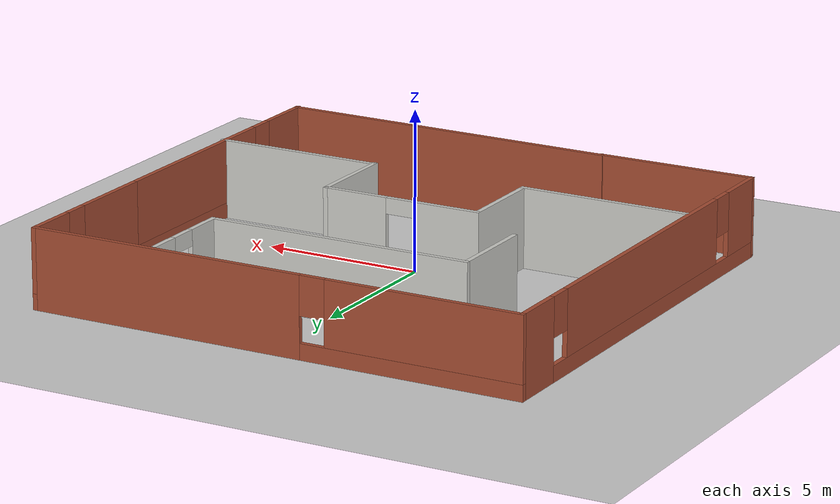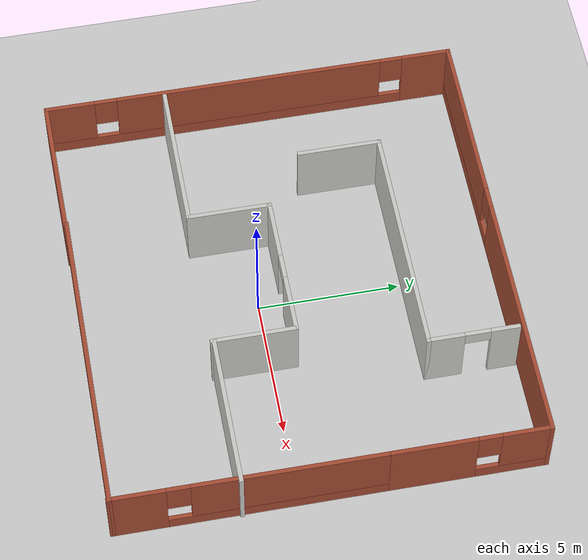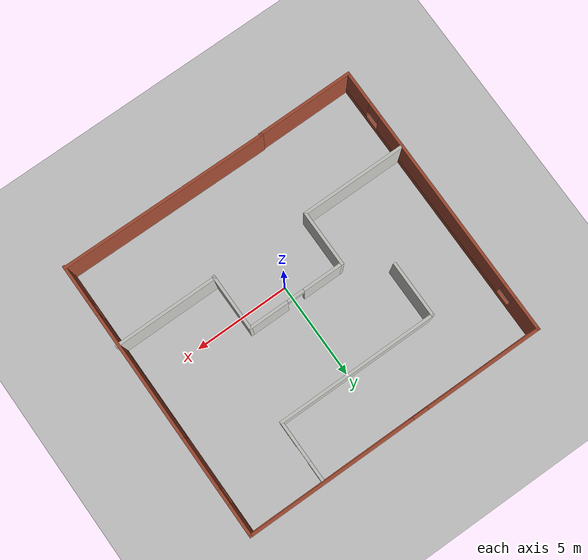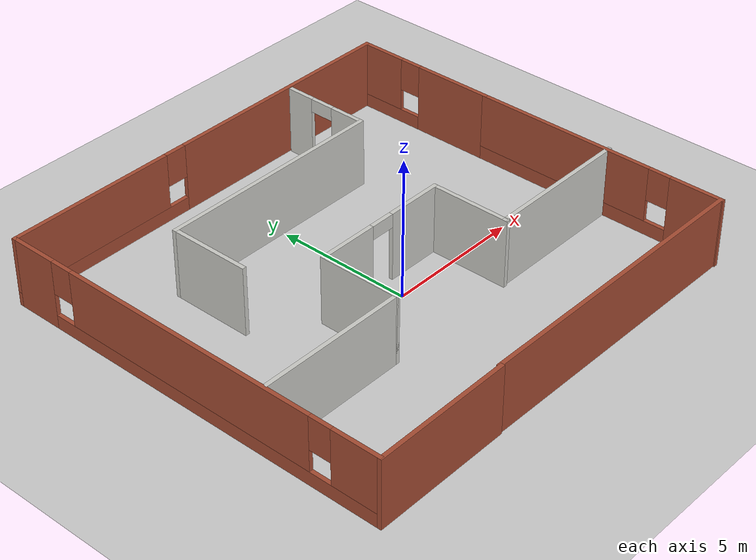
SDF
<?xml version="1.0" ?>
<sdf version="1.4">
 <world name="default">
    <scene>
      <ambient>0.68 0.68 0.68 1.0</ambient>
      <shadows> false</shadows>
      <sky>
        <sunrise/>
        <clouds>
          <speed>12</speed>
      </clouds>
      </sky>
    </scene>

    <physics type='ode'>
      <max_step_size>0.001</max_step_size>
      <real_time_factor>1</real_time_factor>
      <real_time_update_rate>1000</real_time_update_rate>
      <gravity>0 0 -9.8</gravity>
    </physics>

    <include>
      <uri>model://SampleScene</uri>
    </include>
    <include>
      <uri>model://ISCAS_groundplane</uri>
    </include>
  </world>
</sdf>

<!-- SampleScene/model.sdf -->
<sdf version='1.6'>
  <model name='SampleScene'>
    <pose frame=''>-0.088684 1.08173 0 0 -0 0</pose>
    <link name='Wall_0'>
      <collision name='Wall_0_Collision'>
        <geometry>
          <box>
            <size>11.0007 0.15 2.5</size>
          </box>
        </geometry>
        <pose frame=''>0 0 1.25 0 -0 0</pose>
      </collision>
      <visual name='Wall_0_Visual'>
        <pose frame=''>0 0 1.25 0 -0 0</pose>
        <geometry>
          <box>
            <size>11.0007 0.15 2.5</size>
          </box>
        </geometry>
        <material>
          <script>
            <uri>file://media/materials/scripts/gazebo.material</uri>
            <name>Gazebo/Bricks</name>
          </script>
          <ambient>1 1 1 1</ambient>
        </material>
        <meta>
          <layer>0</layer>
        </meta>
      </visual>
      <pose frame=''>2.4645 -7.28966 0 0 -0 -0.007415</pose>
    </link>
    <link name='Wall_1'>
      <pose frame=''>7.8895 -2.675 0 0 -0 1.5708</pose>
      <visual name='Wall_1_Visual_0'>
        <pose frame=''>-3.78336 0 1.25 0 -0 0</pose>
        <geometry>
          <box>
            <size>1.97351 0.15 2.5</size>
          </box>
        </geometry>
        <material>
          <script>
            <uri>file://media/materials/scripts/gazebo.material</uri>
            <name>Gazebo/Bricks</name>
          </script>
          <ambient>1 1 1 1</ambient>
        </material>
        <meta>
          <layer>0</layer>
        </meta>
      </visual>
      <collision name='Wall_1_Collision_0'>
        <geometry>
          <box>
            <size>1.97351 0.15 2.5</size>
          </box>
        </geometry>
        <pose frame=''>-3.78336 0 1.25 0 -0 0</pose>
      </collision>
      <visual name='Wall_1_Visual_1'>
        <pose frame=''>0.986754 0 0.25 0 -0 0</pose>
        <geometry>
          <box>
            <size>7.56672 0.15 0.5</size>
          </box>
        </geometry>
        <material>
          <script>
            <uri>file://media/materials/scripts/gazebo.material</uri>
            <name>Gazebo/Bricks</name>
          </script>
          <ambient>1 1 1 1</ambient>
        </material>
        <meta>
          <layer>0</layer>
        </meta>
      </visual>
      <collision name='Wall_1_Collision_1'>
        <geometry>
          <box>
            <size>7.56672 0.15 0.5</size>
          </box>
        </geometry>
        <pose frame=''>0.986754 0 0.25 0 -0 0</pose>
      </collision>
      <visual name='Wall_1_Visual_2'>
        <pose frame=''>1.38675 0 1.5 0 -0 0</pose>
        <geometry>
          <box>
            <size>6.76672 0.15 2</size>
          </box>
        </geometry>
        <material>
          <script>
            <uri>file://media/materials/scripts/gazebo.material</uri>
            <name>Gazebo/Bricks</name>
          </script>
          <ambient>1 1 1 1</ambient>
        </material>
        <meta>
          <layer>0</layer>
        </meta>
      </visual>
      <collision name='Wall_1_Collision_2'>
        <geometry>
          <box>
            <size>6.76672 0.15 2</size>
          </box>
        </geometry>
        <pose frame=''>1.38675 0 1.5 0 -0 0</pose>
      </collision>
      <visual name='Wall_1_Visual_3'>
        <pose frame=''>-2.39661 0 1.9 0 -0 0</pose>
        <geometry>
          <box>
            <size>0.8 0.15 1.2</size>
          </box>
        </geometry>
        <material>
          <script>
            <uri>file://media/materials/scripts/gazebo.material</uri>
            <name>Gazebo/Bricks</name>
          </script>
          <ambient>1 1 1 1</ambient>
        </material>
        <meta>
          <layer>0</layer>
        </meta>
      </visual>
      <collision name='Wall_1_Collision_3'>
        <geometry>
          <box>
            <size>0.8 0.15 1.2</size>
          </box>
        </geometry>
        <pose frame=''>-2.39661 0 1.9 0 -0 0</pose>
      </collision>
    </link>
    <link name='Wall_11'>
      <pose frame=''>3.89864 5.63446 0 0 -0 -1.5708</pose>
      <visual name='Wall_11_Visual_0'>
        <pose frame=''>-1.11091 0 1.25 0 -0 0</pose>
        <geometry>
          <box>
            <size>1.02818 0.15 2.5</size>
          </box>
        </geometry>
        <material>
          <script>
            <uri>file://media/materials/scripts/gazebo.material</uri>
            <name>Gazebo/CeilingTiled</name>
          </script>
          <ambient>0.921569 0.807843 0.615686 1</ambient>
        </material>
        <meta>
          <layer>0</layer>
        </meta>
      </visual>
      <collision name='Wall_11_Collision_0'>
        <geometry>
          <box>
            <size>1.02818 0.15 2.5</size>
          </box>
        </geometry>
        <pose frame=''>-1.11091 0 1.25 0 -0 0</pose>
      </collision>
      <visual name='Wall_11_Visual_1'>
        <pose frame=''>0.964093 0 1.25 0 -0 0</pose>
        <geometry>
          <box>
            <size>1.32181 0.15 2.5</size>
          </box>
        </geometry>
        <material>
          <script>
            <uri>file://media/materials/scripts/gazebo.material</uri>
            <name>Gazebo/CeilingTiled</name>
          </script>
          <ambient>0.921569 0.807843 0.615686 1</ambient>
        </material>
        <meta>
          <layer>0</layer>
        </meta>
      </visual>
      <collision name='Wall_11_Collision_1'>
        <geometry>
          <box>
            <size>1.32181 0.15 2.5</size>
          </box>
        </geometry>
        <pose frame=''>0.964093 0 1.25 0 -0 0</pose>
      </collision>
      <visual name='Wall_11_Visual_2'>
        <pose frame=''>-0.146815 0 2.25 0 -0 0</pose>
        <geometry>
          <box>
            <size>0.9 0.15 0.5</size>
          </box>
        </geometry>
        <material>
          <script>
            <uri>file://media/materials/scripts/gazebo.material</uri>
            <name>Gazebo/CeilingTiled</name>
          </script>
          <ambient>0.921569 0.807843 0.615686 1</ambient>
        </material>
        <meta>
          <layer>0</layer>
        </meta>
      </visual>
      <collision name='Wall_11_Collision_2'>
        <geometry>
          <box>
            <size>0.9 0.15 0.5</size>
          </box>
        </geometry>
        <pose frame=''>-0.146815 0 2.25 0 -0 0</pose>
      </collision>
    </link>
    <link name='Wall_12'>
      <collision name='Wall_12_Collision'>
        <geometry>
          <box>
            <size>8.5 0.15 2.5</size>
          </box>
        </geometry>
        <pose frame=''>0 0 1.25 0 -0 0</pose>
      </collision>
      <visual name='Wall_12_Visual'>
        <pose frame=''>0 0 1.25 0 -0 0</pose>
        <geometry>
          <box>
            <size>8.5 0.15 2.5</size>
          </box>
        </geometry>
        <material>
          <script>
            <uri>file://media/materials/scripts/gazebo.material</uri>
            <name>Gazebo/CeilingTiled</name>
          </script>
          <ambient>0.921569 0.807843 0.615686 1</ambient>
        </material>
        <meta>
          <layer>0</layer>
        </meta>
      </visual>
      <pose frame=''>-0.276365 4.08446 0 0 -0 3.14159</pose>
    </link>
    <link name='Wall_13'>
      <collision name='Wall_13_Collision'>
        <geometry>
          <box>
            <size>3 0.15 2.5</size>
          </box>
        </geometry>
        <pose frame=''>0 0 1.25 0 -0 0</pose>
      </collision>
      <visual name='Wall_13_Visual'>
        <pose frame=''>0 0 1.25 0 -0 0</pose>
        <geometry>
          <box>
            <size>3 0.15 2.5</size>
          </box>
        </geometry>
        <material>
          <script>
            <uri>file://media/materials/scripts/gazebo.material</uri>
            <name>Gazebo/CeilingTiled</name>
          </script>
          <ambient>0.921569 0.807843 0.615686 1</ambient>
        </material>
        <meta>
          <layer>0</layer>
        </meta>
      </visual>
      <pose frame=''>-4.45137 2.65946 0 0 -0 -1.5708</pose>
    </link>
    <link name='Wall_24'>
      <collision name='Wall_24_Collision'>
        <geometry>
          <box>
            <size>5.5 0.15 2.5</size>
          </box>
        </geometry>
        <pose frame=''>0 0 1.25 0 -0 0</pose>
      </collision>
      <visual name='Wall_24_Visual'>
        <pose frame=''>0 0 1.25 0 -0 0</pose>
        <geometry>
          <box>
            <size>5.5 0.15 2.5</size>
          </box>
        </geometry>
        <material>
          <script>
            <uri>file://media/materials/scripts/gazebo.material</uri>
            <name>Gazebo/CeilingTiled</name>
          </script>
          <ambient>0.921569 0.807843 0.615686 1</ambient>
        </material>
        <meta>
          <layer>0</layer>
        </meta>
      </visual>
      <pose frame=''>-5.16403 -3.04999 0 0 -0 0</pose>
    </link>
    <link name='Wall_25'>
      <collision name='Wall_25_Collision'>
        <geometry>
          <box>
            <size>3 0.15 2.5</size>
          </box>
        </geometry>
        <pose frame=''>0 0 1.25 0 -0 0</pose>
      </collision>
      <visual name='Wall_25_Visual'>
        <pose frame=''>0 0 1.25 0 -0 0</pose>
        <geometry>
          <box>
            <size>3 0.15 2.5</size>
          </box>
        </geometry>
        <material>
          <script>
            <uri>file://media/materials/scripts/gazebo.material</uri>
            <name>Gazebo/CeilingTiled</name>
          </script>
          <ambient>0.921569 0.807843 0.615686 1</ambient>
        </material>
        <meta>
          <layer>0</layer>
        </meta>
      </visual>
      <pose frame=''>-2.48903 -1.62499 0 0 -0 1.5708</pose>
    </link>
    <link name='Wall_28'>
      <pose frame=''>0.060971 -0.199991 0 0 -0 0</pose>
      <visual name='Wall_28_Visual_0'>
        <pose frame=''>-1.52407 0 1.25 0 -0 0</pose>
        <geometry>
          <box>
            <size>2.20186 0.15 2.5</size>
          </box>
        </geometry>
        <material>
          <script>
            <uri>file://media/materials/scripts/gazebo.material</uri>
            <name>Gazebo/CeilingTiled</name>
          </script>
          <ambient>0.921569 0.807843 0.615686 1</ambient>
        </material>
        <meta>
          <layer>0</layer>
        </meta>
      </visual>
      <collision name='Wall_28_Collision_0'>
        <geometry>
          <box>
            <size>2.20186 0.15 2.5</size>
          </box>
        </geometry>
        <pose frame=''>-1.52407 0 1.25 0 -0 0</pose>
      </collision>
      <visual name='Wall_28_Visual_1'>
        <pose frame=''>1.55093 0 1.25 0 -0 0</pose>
        <geometry>
          <box>
            <size>2.14814 0.15 2.5</size>
          </box>
        </geometry>
        <material>
          <script>
            <uri>file://media/materials/scripts/gazebo.material</uri>
            <name>Gazebo/CeilingTiled</name>
          </script>
          <ambient>0.921569 0.807843 0.615686 1</ambient>
        </material>
        <meta>
          <layer>0</layer>
        </meta>
      </visual>
      <collision name='Wall_28_Collision_1'>
        <geometry>
          <box>
            <size>2.14814 0.15 2.5</size>
          </box>
        </geometry>
        <pose frame=''>1.55093 0 1.25 0 -0 0</pose>
      </collision>
      <visual name='Wall_28_Visual_2'>
        <pose frame=''>0.026859 0 2.25 0 -0 0</pose>
        <geometry>
          <box>
            <size>0.9 0.15 0.5</size>
          </box>
        </geometry>
        <material>
          <script>
            <uri>file://media/materials/scripts/gazebo.material</uri>
            <name>Gazebo/CeilingTiled</name>
          </script>
          <ambient>0.921569 0.807843 0.615686 1</ambient>
        </material>
        <meta>
          <layer>0</layer>
        </meta>
      </visual>
      <collision name='Wall_28_Collision_2'>
        <geometry>
          <box>
            <size>0.9 0.15 0.5</size>
          </box>
        </geometry>
        <pose frame=''>0.026859 0 2.25 0 -0 0</pose>
      </collision>
    </link>
    <link name='Wall_29'>
      <collision name='Wall_29_Collision'>
        <geometry>
          <box>
            <size>3.016 0.15 2.5</size>
          </box>
        </geometry>
        <pose frame=''>0 0 1.25 0 -0 0</pose>
      </collision>
      <visual name='Wall_29_Visual'>
        <pose frame=''>0 0 1.25 0 -0 0</pose>
        <geometry>
          <box>
            <size>3.016 0.15 2.5</size>
          </box>
        </geometry>
        <material>
          <script>
            <uri>file://media/materials/scripts/gazebo.material</uri>
            <name>Gazebo/CeilingTiled</name>
          </script>
          <ambient>0.921569 0.807843 0.615686 1</ambient>
        </material>
        <meta>
          <layer>0</layer>
        </meta>
      </visual>
      <pose frame=''>2.61097 -1.63299 0 0 -0 -1.5708</pose>
    </link>
    <link name='Wall_3'>
      <pose frame=''>7.8895 4.69511 0 0 -0 1.5708</pose>
      <visual name='Wall_3_Visual_0'>
        <pose frame=''>-1.27132 0 1.25 0 -0 0</pose>
        <geometry>
          <box>
            <size>2.95736 0.15 2.5</size>
          </box>
        </geometry>
        <material>
          <script>
            <uri>file://media/materials/scripts/gazebo.material</uri>
            <name>Gazebo/Bricks</name>
          </script>
          <ambient>1 1 1 1</ambient>
        </material>
        <meta>
          <layer>0</layer>
        </meta>
      </visual>
      <collision name='Wall_3_Collision_0'>
        <geometry>
          <box>
            <size>2.95736 0.15 2.5</size>
          </box>
        </geometry>
        <pose frame=''>-1.27132 0 1.25 0 -0 0</pose>
      </collision>
      <visual name='Wall_3_Visual_1'>
        <pose frame=''>1.47868 0 0.25 0 -0 0</pose>
        <geometry>
          <box>
            <size>2.54264 0.15 0.5</size>
          </box>
        </geometry>
        <material>
          <script>
            <uri>file://media/materials/scripts/gazebo.material</uri>
            <name>Gazebo/Bricks</name>
          </script>
          <ambient>1 1 1 1</ambient>
        </material>
        <meta>
          <layer>0</layer>
        </meta>
      </visual>
      <collision name='Wall_3_Collision_1'>
        <geometry>
          <box>
            <size>2.54264 0.15 0.5</size>
          </box>
        </geometry>
        <pose frame=''>1.47868 0 0.25 0 -0 0</pose>
      </collision>
      <visual name='Wall_3_Visual_2'>
        <pose frame=''>1.87868 0 1.5 0 -0 0</pose>
        <geometry>
          <box>
            <size>1.74264 0.15 2</size>
          </box>
        </geometry>
        <material>
          <script>
            <uri>file://media/materials/scripts/gazebo.material</uri>
            <name>Gazebo/Bricks</name>
          </script>
          <ambient>1 1 1 1</ambient>
        </material>
        <meta>
          <layer>0</layer>
        </meta>
      </visual>
      <collision name='Wall_3_Collision_2'>
        <geometry>
          <box>
            <size>1.74264 0.15 2</size>
          </box>
        </geometry>
        <pose frame=''>1.87868 0 1.5 0 -0 0</pose>
      </collision>
      <visual name='Wall_3_Visual_3'>
        <pose frame=''>0.607358 0 1.9 0 -0 0</pose>
        <geometry>
          <box>
            <size>0.8 0.15 1.2</size>
          </box>
        </geometry>
        <material>
          <script>
            <uri>file://media/materials/scripts/gazebo.material</uri>
            <name>Gazebo/Bricks</name>
          </script>
          <ambient>1 1 1 1</ambient>
        </material>
        <meta>
          <layer>0</layer>
        </meta>
      </visual>
      <collision name='Wall_3_Collision_3'>
        <geometry>
          <box>
            <size>0.8 0.15 1.2</size>
          </box>
        </geometry>
        <pose frame=''>0.607358 0 1.9 0 -0 0</pose>
      </collision>
    </link>
    <link name='Wall_30'>
      <collision name='Wall_30_Collision'>
        <geometry>
          <box>
            <size>5.5 0.15 2.5</size>
          </box>
        </geometry>
        <pose frame=''>0 0 1.25 0 -0 0</pose>
      </collision>
      <visual name='Wall_30_Visual'>
        <pose frame=''>0 0 1.25 0 -0 0</pose>
        <geometry>
          <box>
            <size>5.5 0.15 2.5</size>
          </box>
        </geometry>
        <material>
          <script>
            <uri>file://media/materials/scripts/gazebo.material</uri>
            <name>Gazebo/CeilingTiled</name>
          </script>
          <ambient>0.921569 0.807843 0.615686 1</ambient>
        </material>
        <meta>
          <layer>0</layer>
        </meta>
      </visual>
      <pose frame=''>5.28597 -3.01279 0 0 -0 0</pose>
    </link>
    <link name='Wall_7'>
      <pose frame=''>-0.035498 7.37011 0 0 -0 3.14159</pose>
      <visual name='Wall_7_Visual_0'>
        <pose frame=''>-3.51686 0 1.25 0 -0 0</pose>
        <geometry>
          <box>
            <size>8.96628 0.15 2.5</size>
          </box>
        </geometry>
        <material>
          <script>
            <uri>file://media/materials/scripts/gazebo.material</uri>
            <name>Gazebo/Bricks</name>
          </script>
          <ambient>1 1 1 1</ambient>
        </material>
        <meta>
          <layer>0</layer>
        </meta>
      </visual>
      <collision name='Wall_7_Collision_0'>
        <geometry>
          <box>
            <size>8.96628 0.15 2.5</size>
          </box>
        </geometry>
        <pose frame=''>-3.51686 0 1.25 0 -0 0</pose>
      </collision>
      <visual name='Wall_7_Visual_1'>
        <pose frame=''>4.48314 0 0.25 0 -0 0</pose>
        <geometry>
          <box>
            <size>7.03372 0.15 0.5</size>
          </box>
        </geometry>
        <material>
          <script>
            <uri>file://media/materials/scripts/gazebo.material</uri>
            <name>Gazebo/Bricks</name>
          </script>
          <ambient>1 1 1 1</ambient>
        </material>
        <meta>
          <layer>0</layer>
        </meta>
      </visual>
      <collision name='Wall_7_Collision_1'>
        <geometry>
          <box>
            <size>7.03372 0.15 0.5</size>
          </box>
        </geometry>
        <pose frame=''>4.48314 0 0.25 0 -0 0</pose>
      </collision>
      <visual name='Wall_7_Visual_2'>
        <pose frame=''>4.88314 0 1.5 0 -0 0</pose>
        <geometry>
          <box>
            <size>6.23372 0.15 2</size>
          </box>
        </geometry>
        <material>
          <script>
            <uri>file://media/materials/scripts/gazebo.material</uri>
            <name>Gazebo/Bricks</name>
          </script>
          <ambient>1 1 1 1</ambient>
        </material>
        <meta>
          <layer>0</layer>
        </meta>
      </visual>
      <collision name='Wall_7_Collision_2'>
        <geometry>
          <box>
            <size>6.23372 0.15 2</size>
          </box>
        </geometry>
        <pose frame=''>4.88314 0 1.5 0 -0 0</pose>
      </collision>
      <visual name='Wall_7_Visual_3'>
        <pose frame=''>1.36628 0 1.9 0 -0 0</pose>
        <geometry>
          <box>
            <size>0.8 0.15 1.2</size>
          </box>
        </geometry>
        <material>
          <script>
            <uri>file://media/materials/scripts/gazebo.material</uri>
            <name>Gazebo/Bricks</name>
          </script>
          <ambient>1 1 1 1</ambient>
        </material>
        <meta>
          <layer>0</layer>
        </meta>
      </visual>
      <collision name='Wall_7_Collision_3'>
        <geometry>
          <box>
            <size>0.8 0.15 1.2</size>
          </box>
        </geometry>
        <pose frame=''>1.36628 0 1.9 0 -0 0</pose>
      </collision>
    </link>
    <link name='Wall_8'>
      <pose frame=''>-7.9605 0.05 0 0 -0 -1.5708</pose>
      <visual name='Wall_8_Visual_0'>
        <pose frame=''>-6.49719 0 1.25 0 -0 0</pose>
        <geometry>
          <box>
            <size>1.79584 0.15 2.5</size>
          </box>
        </geometry>
        <material>
          <script>
            <uri>file://media/materials/scripts/gazebo.material</uri>
            <name>Gazebo/Bricks</name>
          </script>
          <ambient>1 1 1 1</ambient>
        </material>
        <meta>
          <layer>0</layer>
        </meta>
      </visual>
      <collision name='Wall_8_Collision_0'>
        <geometry>
          <box>
            <size>1.79584 0.15 2.5</size>
          </box>
        </geometry>
        <pose frame=''>-6.49719 0 1.25 0 -0 0</pose>
      </collision>
      <visual name='Wall_8_Visual_1'>
        <pose frame=''>0.897921 0 0.25 0 -0 0</pose>
        <geometry>
          <box>
            <size>12.9944 0.15 0.5</size>
          </box>
        </geometry>
        <material>
          <script>
            <uri>file://media/materials/scripts/gazebo.material</uri>
            <name>Gazebo/Bricks</name>
          </script>
          <ambient>1 1 1 1</ambient>
        </material>
        <meta>
          <layer>0</layer>
        </meta>
      </visual>
      <collision name='Wall_8_Collision_1'>
        <geometry>
          <box>
            <size>12.9944 0.15 0.5</size>
          </box>
        </geometry>
        <pose frame=''>0.897921 0 0.25 0 -0 0</pose>
      </collision>
      <visual name='Wall_8_Visual_2'>
        <pose frame=''>0.014368 0 1.5 0 -0 0</pose>
        <geometry>
          <box>
            <size>9.62728 0.15 2</size>
          </box>
        </geometry>
        <material>
          <script>
            <uri>file://media/materials/scripts/gazebo.material</uri>
            <name>Gazebo/Bricks</name>
          </script>
          <ambient>1 1 1 1</ambient>
        </material>
        <meta>
          <layer>0</layer>
        </meta>
      </visual>
      <collision name='Wall_8_Collision_2'>
        <geometry>
          <box>
            <size>9.62728 0.15 2</size>
          </box>
        </geometry>
        <pose frame=''>0.014368 0 1.5 0 -0 0</pose>
      </collision>
      <visual name='Wall_8_Visual_3'>
        <pose frame=''>6.51156 0 1.5 0 -0 0</pose>
        <geometry>
          <box>
            <size>1.76711 0.15 2</size>
          </box>
        </geometry>
        <material>
          <script>
            <uri>file://media/materials/scripts/gazebo.material</uri>
            <name>Gazebo/Bricks</name>
          </script>
          <ambient>1 1 1 1</ambient>
        </material>
        <meta>
          <layer>0</layer>
        </meta>
      </visual>
      <collision name='Wall_8_Collision_3'>
        <geometry>
          <box>
            <size>1.76711 0.15 2</size>
          </box>
        </geometry>
        <pose frame=''>6.51156 0 1.5 0 -0 0</pose>
      </collision>
      <visual name='Wall_8_Visual_4'>
        <pose frame=''>-5.19927 0 1.9 0 -0 0</pose>
        <geometry>
          <box>
            <size>0.8 0.15 1.2</size>
          </box>
        </geometry>
        <material>
          <script>
            <uri>file://media/materials/scripts/gazebo.material</uri>
            <name>Gazebo/Bricks</name>
          </script>
          <ambient>1 1 1 1</ambient>
        </material>
        <meta>
          <layer>0</layer>
        </meta>
      </visual>
      <collision name='Wall_8_Collision_4'>
        <geometry>
          <box>
            <size>0.8 0.15 1.2</size>
          </box>
        </geometry>
        <pose frame=''>-5.19927 0 1.9 0 -0 0</pose>
      </collision>
      <visual name='Wall_8_Visual_5'>
        <pose frame=''>5.22801 0 1.9 0 -0 0</pose>
        <geometry>
          <box>
            <size>0.8 0.15 1.2</size>
          </box>
        </geometry>
        <material>
          <script>
            <uri>file://media/materials/scripts/gazebo.material</uri>
            <name>Gazebo/Bricks</name>
          </script>
          <ambient>1 1 1 1</ambient>
        </material>
        <meta>
          <layer>0</layer>
        </meta>
      </visual>
      <collision name='Wall_8_Collision_5'>
        <geometry>
          <box>
            <size>0.8 0.15 1.2</size>
          </box>
        </geometry>
        <pose frame=''>5.22801 0 1.9 0 -0 0</pose>
      </collision>
    </link>
    <link name='Wall_9'>
      <collision name='Wall_9_Collision'>
        <geometry>
          <box>
            <size>5.15037 0.15 2.5</size>
          </box>
        </geometry>
        <pose frame=''>0 0 1.25 0 -0 0</pose>
      </collision>
      <visual name='Wall_9_Visual'>
        <pose frame=''>0 0 1.25 0 -0 0</pose>
        <geometry>
          <box>
            <size>5.15037 0.15 2.5</size>
          </box>
        </geometry>
        <material>
          <script>
            <uri>file://media/materials/scripts/gazebo.material</uri>
            <name>Gazebo/Bricks</name>
          </script>
          <ambient>1 1 1 1</ambient>
        </material>
        <meta>
          <layer>0</layer>
        </meta>
      </visual>
      <pose frame=''>-5.4605 -7.3 0 0 -0 0.004136</pose>
    </link>
    <static>1</static>
  </model>
</sdf>

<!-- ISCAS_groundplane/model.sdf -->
<sdf version="1.4">
  <model name="ISCAS_groundplane">
    <static>true</static>
    <link name="link">
      <collision name="collision">
        <geometry>
          <plane>
            <normal>0 0 1</normal>
            <size>30 30</size>
          </plane>
        </geometry>
        <surface>
          <friction>
            <ode>
              <mu>100</mu>
              <mu2>50</mu2>
            </ode>
          </friction>
        </surface>
      </collision>
      <visual name="visual">
        <cast_shadows>false</cast_shadows>
        <geometry>
          <plane>
            <normal>0 0 1</normal>
            <size>30 30</size>
          </plane>
        </geometry>
        <material>
          <script>
            <uri>model://ISCAS_groundplane/materials/scripts</uri>
            <uri>model://ISCAS_groundplane/materials/textures</uri>
            <name>ISCAS_groundplane/Image </name>
          </script>
        </material>
      </visual>
    </link>
  </model>
</sdf>
